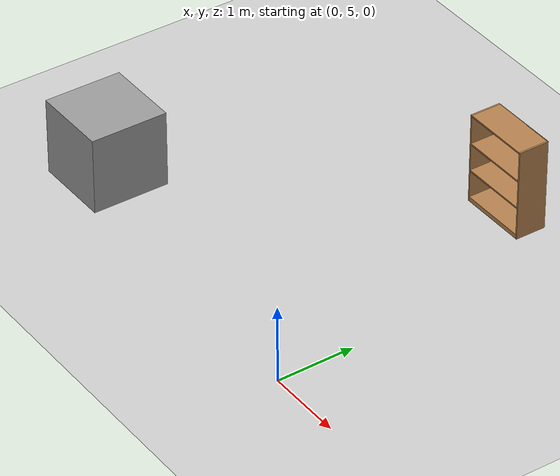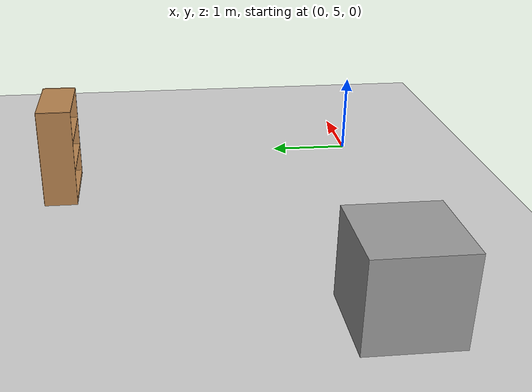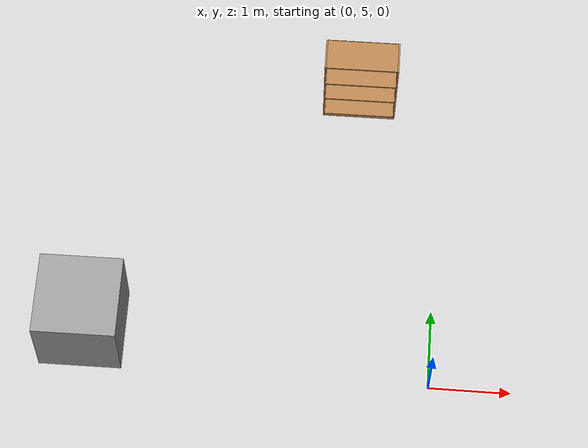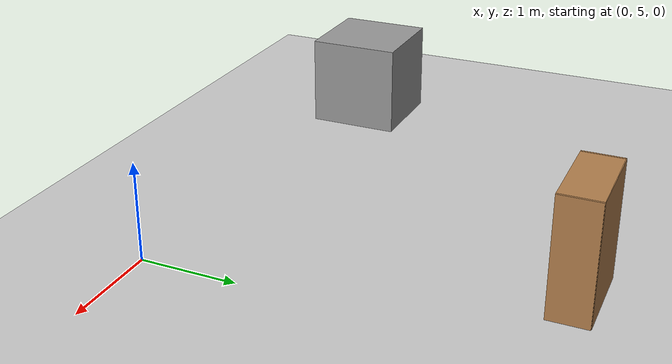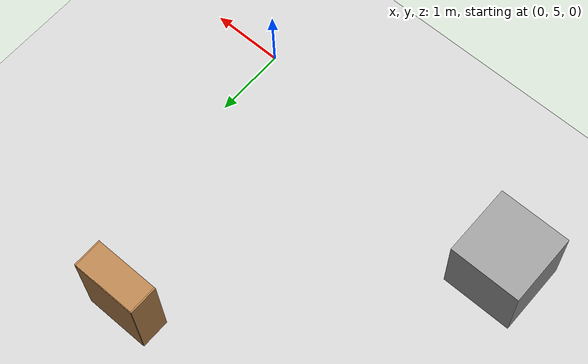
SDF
<sdf version="1.7">
 <world name="default">
  <model name="ground_plane">
   <static>1</static>
   <link name="link">
    <collision name="collision">
     <geometry><plane><normal>0 0 1</normal><size>100 100</size></plane></geometry>
     <surface>
      <contact><collide_bitmask>65535</collide_bitmask></contact>
      <friction><ode><mu>100</mu><mu2>50</mu2></ode></friction>
     </surface>
    </collision>
    <visual name="visual">
     <cast_shadows>0</cast_shadows>
     <geometry><plane><normal>0 0 1</normal><size>100 100</size></plane></geometry>
     <material>
      <script><uri>file://media/materials/scripts/gazebo.material</uri><name>Gazebo/Grey</name></script>
     </material>
    </visual>
   </link>
  </model>
  <model name="unit_box">
   <pose>-4.22084 5.51314 0.499995 0 1e-05 0</pose>
   <link name="link">
    <inertial>
     <mass>1</mass>
     <inertia>
      <ixx>0.166667</ixx>
      <ixy>0</ixy>
      <ixz>0</ixz>
      <iyy>0.166667</iyy>
      <iyz>0</iyz>
      <izz>0.166667</izz>
     </inertia>
    </inertial>
    <collision name="collision"><geometry><box><size>1 1 1</size></box></geometry></collision>
    <visual name="visual">
     <geometry><box><size>1 1 1</size></box></geometry>
     <material>
      <script><name>Gazebo/Grey</name><uri>file://media/materials/scripts/gazebo.material</uri></script>
     </material>
    </visual>
   </link>
  </model>
  <model name="bookshelf_clone_3">
   <static>1</static>
   <link name="link">
    <inertial><mass>1</mass></inertial>
    <collision name="back">
     <pose>0 0.005 0.6 0 -0 0</pose>
     <geometry><box><size>0.9 0.01 1.2</size></box></geometry>
    </collision>
    <visual name="visual1">
     <pose>0 0.005 0.6 0 -0 0</pose>
     <geometry><box><size>0.9 0.01 1.2</size></box></geometry>
     <material>
      <script><uri>file://media/materials/scripts/gazebo.material</uri><name>Gazebo/Wood</name></script>
     </material>
    </visual>
    <collision name="left_side">
     <pose>0.45 -0.195 0.6 0 -0 0</pose>
     <geometry><box><size>0.02 0.4 1.2</size></box></geometry>
    </collision>
    <visual name="visual2">
     <pose>0.45 -0.195 0.6 0 -0 0</pose>
     <geometry><box><size>0.02 0.4 1.2</size></box></geometry>
     <material>
      <script><uri>file://media/materials/scripts/gazebo.material</uri><name>Gazebo/Wood</name></script>
     </material>
    </visual>
    <collision name="right_side">
     <pose>-0.45 -0.195 0.6 0 -0 0</pose>
     <geometry><box><size>0.02 0.4 1.2</size></box></geometry>
    </collision>
    <visual name="visual3">
     <pose>-0.45 -0.195 0.6 0 -0 0</pose>
     <geometry><box><size>0.02 0.4 1.2</size></box></geometry>
     <material>
      <script><uri>file://media/materials/scripts/gazebo.material</uri><name>Gazebo/Wood</name></script>
     </material>
    </visual>
    <collision name="bottom">
     <pose>0 -0.195 0.03 0 -0 0</pose>
     <geometry><box><size>0.88 0.4 0.06</size></box></geometry>
    </collision>
    <visual name="visual4">
     <pose>0 -0.195 0.03 0 -0 0</pose>
     <geometry><box><size>0.88 0.4 0.06</size></box></geometry>
     <material>
      <script><uri>file://media/materials/scripts/gazebo.material</uri><name>Gazebo/Wood</name></script>
     </material>
    </visual>
    <collision name="top">
     <pose>0 -0.195 1.19 0 -0 0</pose>
     <geometry><box><size>0.88 0.4 0.02</size></box></geometry>
    </collision>
    <visual name="visual5">
     <pose>0 -0.195 1.19 0 -0 0</pose>
     <geometry><box><size>0.88 0.4 0.02</size></box></geometry>
     <material>
      <script><uri>file://media/materials/scripts/gazebo.material</uri><name>Gazebo/Wood</name></script>
     </material>
    </visual>
    <collision name="low_shelf">
     <pose>0 -0.195 0.43 0 -0 0</pose>
     <geometry><box><size>0.88 0.4 0.02</size></box></geometry>
    </collision>
    <visual name="visual6">
     <pose>0 -0.195 0.43 0 -0 0</pose>
     <geometry><box><size>0.88 0.4 0.02</size></box></geometry>
     <material>
      <script><uri>file://media/materials/scripts/gazebo.material</uri><name>Gazebo/Wood</name></script>
     </material>
    </visual>
    <collision name="high_shelf">
     <pose>0 -0.195 0.8 0 -0 0</pose>
     <geometry><box><size>0.88 0.4 0.02</size></box></geometry>
    </collision>
    <visual name="visual7">
     <pose>0 -0.195 0.8 0 -0 0</pose>
     <geometry><box><size>0.88 0.4 0.02</size></box></geometry>
     <material>
      <script><uri>file://media/materials/scripts/gazebo.material</uri><name>Gazebo/Wood</name></script>
     </material>
    </visual>
   </link>
   <pose>-1.02386 9.07543 0 0 -0 0</pose>
  </model>
 </world>
</sdf>
